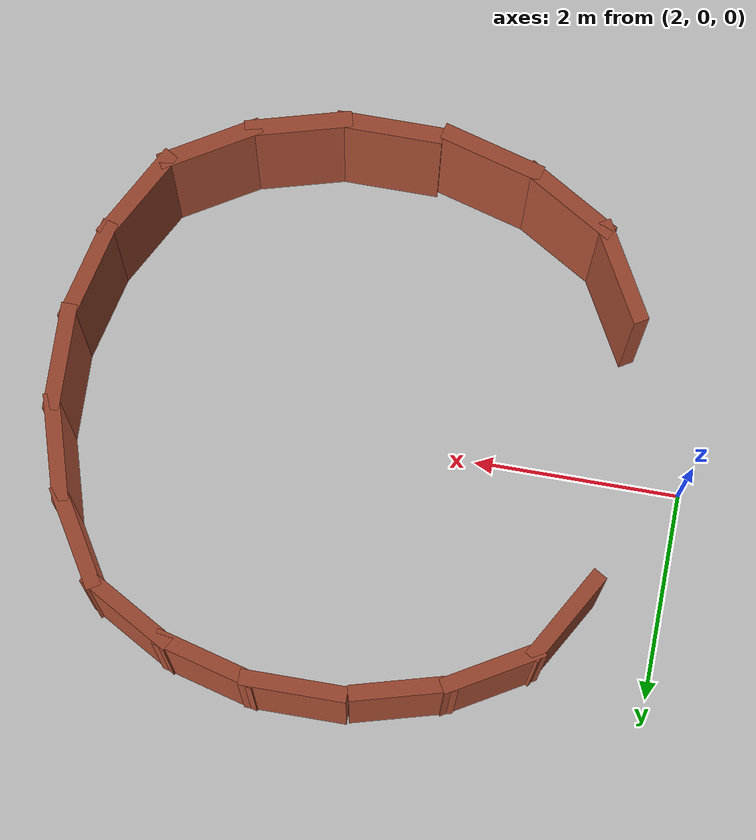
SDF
<sdf version="1.6">
 <world name="default">
  <light name="sun" type="directional">
   <pose>0 0 10 0 -0 0</pose>
   <diffuse>0.8 0.8 0.8 1</diffuse>
   <specular>0.2 0.2 0.2 1</specular>
   <attenuation>
    <range>1000</range>
    <constant>0.9</constant>
    <linear>0.01</linear>
    <quadratic>0.001</quadratic>
   </attenuation>
   <direction>-0.5 0.1 -0.9</direction>
  </light>
  <model name="ground_plane">
   <static>1</static>
   <link name="link">
    <collision name="collision">
     <geometry><plane><normal>0 0 1</normal><size>100 100</size></plane></geometry>
     <surface><friction><ode><mu>100</mu><mu2>50</mu2></ode></friction></surface>
    </collision>
    <visual name="visual">
     <cast_shadows>0</cast_shadows>
     <geometry><plane><normal>0 0 1</normal><size>100 100</size></plane></geometry>
     <material>
      <script><uri>file://media/materials/scripts/gazebo.material</uri><name>Gazebo/Grey</name></script>
     </material>
    </visual>
   </link>
  </model>
  <gravity>0 0 -9.8</gravity>
  <magnetic_field>6e-06 2.3e-05 -4.2e-05</magnetic_field>
  <atmosphere type="adiabatic"/>
  <physics name="default_physics" default="0" type="ode">
   <max_step_size>0.001</max_step_size>
   <real_time_factor>1</real_time_factor>
   <real_time_update_rate>1000</real_time_update_rate>
  </physics>
  <scene><ambient>0.4 0.4 0.4 1</ambient><background>0.7 0.7 0.7 1</background><shadows>1</shadows></scene>
  <audio><device>default</device></audio>
  <spherical_coordinates>
   <surface_model>EARTH_WGS84</surface_model>
   <latitude_deg>0</latitude_deg>
   <longitude_deg>0</longitude_deg>
   <elevation>0</elevation>
   <heading_deg>0</heading_deg>
  </spherical_coordinates>
  <model name="C_shape">
   <pose>6.40569 0.017417 0 0 -0 0</pose>
   <link name="Wall_0">
    <collision name="Wall_0_Collision">
     <geometry><box><size>1 0.15 2.5</size></box></geometry>
     <pose>0 0 1.25 0 -0 0</pose>
    </collision>
    <visual name="Wall_0_Visual">
     <pose>0 0 1.25 0 -0 0</pose>
     <geometry><box><size>1 0.15 2.5</size></box></geometry>
     <material>
      <script><uri>file://media/materials/scripts/gazebo.material</uri><name>Gazebo/Bricks</name></script>
      <ambient>1 1 1 1</ambient>
     </material>
     <meta><layer>0</layer></meta>
    </visual>
    <pose>1.51765 -0 0 0 -0 1.5708</pose>
   </link>
   <link name="Wall_1">
    <collision name="Wall_1_Collision">
     <geometry><box><size>1 0.15 2.5</size></box></geometry>
     <pose>0 0 1.25 0 -0 0</pose>
    </collision>
    <visual name="Wall_1_Visual">
     <pose>0 0 1.25 0 -0 0</pose>
     <geometry><box><size>1 0.15 2.5</size></box></geometry>
     <material>
      <script><uri>file://media/materials/scripts/gazebo.material</uri><name>Gazebo/Bricks</name></script>
      <ambient>1 1 1 1</ambient>
     </material>
     <meta><layer>0</layer></meta>
    </visual>
    <pose>1.40765 0.835518 0 0 -0 1.8326</pose>
   </link>
   <link name="Wall_10">
    <collision name="Wall_10_Collision">
     <geometry><box><size>1 0.15 2.5</size></box></geometry>
     <pose>0 0 1.25 0 -0 0</pose>
    </collision>
    <visual name="Wall_10_Visual">
     <pose>0 0 1.25 0 -0 0</pose>
     <geometry><box><size>1 0.15 2.5</size></box></geometry>
     <material>
      <script><uri>file://media/materials/scripts/gazebo.material</uri><name>Gazebo/Bricks</name></script>
      <ambient>1 1 1 1</ambient>
     </material>
     <meta><layer>0</layer></meta>
    </visual>
    <pose>0.504592 -2.19466 0 0 -0 -2.61799</pose>
   </link>
   <link name="Wall_11">
    <collision name="Wall_11_Collision">
     <geometry><box><size>1 0.15 2.5</size></box></geometry>
     <pose>0 0 1.25 0 -0 0</pose>
    </collision>
    <visual name="Wall_11_Visual">
     <pose>0 0 1.25 0 -0 0</pose>
     <geometry><box><size>1 0.15 2.5</size></box></geometry>
     <material>
      <script><uri>file://media/materials/scripts/gazebo.material</uri><name>Gazebo/Bricks</name></script>
      <ambient>1 1 1 1</ambient>
     </material>
     <meta><layer>0</layer></meta>
    </visual>
    <pose>-0.273987 -2.51716 0 0 -0 -2.87979</pose>
   </link>
   <link name="Wall_12">
    <collision name="Wall_12_Collision">
     <geometry><box><size>1 0.15 2.5</size></box></geometry>
     <pose>0 0 1.25 0 -0 0</pose>
    </collision>
    <visual name="Wall_12_Visual">
     <pose>0 0 1.25 0 -0 0</pose>
     <geometry><box><size>1 0.15 2.5</size></box></geometry>
     <material>
      <script><uri>file://media/materials/scripts/gazebo.material</uri><name>Gazebo/Bricks</name></script>
      <ambient>1 1 1 1</ambient>
     </material>
     <meta><layer>0</layer></meta>
    </visual>
    <pose>-1.1095 -2.62716 0 0 -0 3.14159</pose>
   </link>
   <link name="Wall_3">
    <collision name="Wall_3_Collision">
     <geometry><box><size>1 0.15 2.5</size></box></geometry>
     <pose>0 0 1.25 0 -0 0</pose>
    </collision>
    <visual name="Wall_3_Visual">
     <pose>0 0 1.25 0 -0 0</pose>
     <geometry><box><size>1 0.15 2.5</size></box></geometry>
     <material>
      <script><uri>file://media/materials/scripts/gazebo.material</uri><name>Gazebo/Bricks</name></script>
      <ambient>1 1 1 1</ambient>
     </material>
     <meta><layer>0</layer></meta>
    </visual>
    <pose>1.08515 1.6141 0 0 -0 2.0944</pose>
   </link>
   <link name="Wall_4">
    <collision name="Wall_4_Collision">
     <geometry><box><size>1 0.15 2.5</size></box></geometry>
     <pose>0 0 1.25 0 -0 0</pose>
    </collision>
    <visual name="Wall_4_Visual">
     <pose>0 0 1.25 0 -0 0</pose>
     <geometry><box><size>1 0.15 2.5</size></box></geometry>
     <material>
      <script><uri>file://media/materials/scripts/gazebo.material</uri><name>Gazebo/Bricks</name></script>
      <ambient>1 1 1 1</ambient>
     </material>
     <meta><layer>0</layer></meta>
    </visual>
    <pose>0.504592 2.19466 0 0 -0 2.61799</pose>
   </link>
   <link name="Wall_5">
    <collision name="Wall_5_Collision">
     <geometry><box><size>1 0.15 2.5</size></box></geometry>
     <pose>0 0 1.25 0 -0 0</pose>
    </collision>
    <visual name="Wall_5_Visual">
     <pose>0 0 1.25 0 -0 0</pose>
     <geometry><box><size>1 0.15 2.5</size></box></geometry>
     <material>
      <script><uri>file://media/materials/scripts/gazebo.material</uri><name>Gazebo/Bricks</name></script>
      <ambient>1 1 1 1</ambient>
     </material>
     <meta><layer>0</layer></meta>
    </visual>
    <pose>-0.273987 2.51716 0 0 -0 2.87979</pose>
   </link>
   <link name="Wall_6">
    <collision name="Wall_6_Collision">
     <geometry><box><size>1 0.15 2.5</size></box></geometry>
     <pose>0 0 1.25 0 -0 0</pose>
    </collision>
    <visual name="Wall_6_Visual">
     <pose>0 0 1.25 0 -0 0</pose>
     <geometry><box><size>1 0.15 2.5</size></box></geometry>
     <material>
      <script><uri>file://media/materials/scripts/gazebo.material</uri><name>Gazebo/Bricks</name></script>
      <ambient>1 1 1 1</ambient>
     </material>
     <meta><layer>0</layer></meta>
    </visual>
    <pose>-1.1095 2.62716 0 0 -0 3.14159</pose>
   </link>
   <link name="Wall_8">
    <collision name="Wall_8_Collision">
     <geometry><box><size>1 0.15 2.5</size></box></geometry>
     <pose>0 0 1.25 0 -0 0</pose>
    </collision>
    <visual name="Wall_8_Visual">
     <pose>0 0 1.25 0 -0 0</pose>
     <geometry><box><size>1 0.15 2.5</size></box></geometry>
     <material>
      <script><uri>file://media/materials/scripts/gazebo.material</uri><name>Gazebo/Bricks</name></script>
      <ambient>1 1 1 1</ambient>
     </material>
     <meta><layer>0</layer></meta>
    </visual>
    <pose>1.40765 -0.835519 0 0 -0 -1.8326</pose>
   </link>
   <link name="Wall_9">
    <collision name="Wall_9_Collision">
     <geometry><box><size>1 0.15 2.5</size></box></geometry>
     <pose>0 0 1.25 0 -0 0</pose>
    </collision>
    <visual name="Wall_9_Visual">
     <pose>0 0 1.25 0 -0 0</pose>
     <geometry><box><size>1 0.15 2.5</size></box></geometry>
     <material>
      <script><uri>file://media/materials/scripts/gazebo.material</uri><name>Gazebo/Bricks</name></script>
      <ambient>1 1 1 1</ambient>
     </material>
     <meta><layer>0</layer></meta>
    </visual>
    <pose>1.08515 -1.6141 0 0 -0 -2.0944</pose>
   </link>
   <static>1</static>
  </model>
  <model name="C_shape_top_cover">
   <link name="Wall_10">
    <pose>0.504592 -2.19466 0 0 0 -2.61799</pose>
    <visual name="Wall_10_Visual">
     <pose>0 0 1.25 0 -0 0</pose>
     <geometry><box><size>1 0.15 2.5</size></box></geometry>
     <material>
      <script><uri>file://media/materials/scripts/gazebo.material</uri><name>Gazebo/Bricks</name></script>
      <ambient>1 1 1 1</ambient>
     </material>
     <meta><layer>0</layer></meta>
    </visual>
    <collision name="Wall_10_Collision">
     <pose>0 0 1.25 0 -0 0</pose>
     <geometry><box><size>1 0.15 2.5</size></box></geometry>
     <surface>
      <friction>
       <ode><mu>1</mu><mu2>1</mu2><fdir1>0 0 0</fdir1><slip1>0</slip1><slip2>0</slip2></ode>
       <torsional>
        <coefficient>1</coefficient>
        <patch_radius>0</patch_radius>
        <surface_radius>0</surface_radius>
        <use_patch_radius>1</use_patch_radius>
        <ode><slip>0</slip></ode>
       </torsional>
      </friction>
      <bounce><restitution_coefficient>0</restitution_coefficient><threshold>1e+06</threshold></bounce>
      <contact>
       <collide_without_contact>0</collide_without_contact>
       <collide_without_contact_bitmask>1</collide_without_contact_bitmask>
       <collide_bitmask>1</collide_bitmask>
       <ode>
        <soft_cfm>0</soft_cfm>
        <soft_erp>0.2</soft_erp>
        <kp>1e+13</kp>
        <kd>1</kd>
        <max_vel>0.01</max_vel>
        <min_depth>0</min_depth>
       </ode>
       <bullet>
        <split_impulse>1</split_impulse>
        <split_impulse_penetration_threshold>-0.01</split_impulse_penetration_threshold>
        <soft_cfm>0</soft_cfm>
        <soft_erp>0.2</soft_erp>
        <kp>1e+13</kp>
        <kd>1</kd>
       </bullet>
      </contact>
     </surface>
    </collision>
   </link>
   <link name="Wall_11">
    <pose>-0.273987 -2.51716 0 0 0 -2.87979</pose>
    <visual name="Wall_11_Visual">
     <pose>0 0 1.25 0 -0 0</pose>
     <geometry><box><size>1 0.15 2.5</size></box></geometry>
     <material>
      <script><uri>file://media/materials/scripts/gazebo.material</uri><name>Gazebo/Bricks</name></script>
      <ambient>1 1 1 1</ambient>
     </material>
     <meta><layer>0</layer></meta>
    </visual>
    <collision name="Wall_11_Collision">
     <pose>0 0 1.25 0 -0 0</pose>
     <geometry><box><size>1 0.15 2.5</size></box></geometry>
     <surface>
      <friction>
       <ode><mu>1</mu><mu2>1</mu2><fdir1>0 0 0</fdir1><slip1>0</slip1><slip2>0</slip2></ode>
       <torsional>
        <coefficient>1</coefficient>
        <patch_radius>0</patch_radius>
        <surface_radius>0</surface_radius>
        <use_patch_radius>1</use_patch_radius>
        <ode><slip>0</slip></ode>
       </torsional>
      </friction>
      <bounce><restitution_coefficient>0</restitution_coefficient><threshold>1e+06</threshold></bounce>
      <contact>
       <collide_without_contact>0</collide_without_contact>
       <collide_without_contact_bitmask>1</collide_without_contact_bitmask>
       <collide_bitmask>1</collide_bitmask>
       <ode>
        <soft_cfm>0</soft_cfm>
        <soft_erp>0.2</soft_erp>
        <kp>1e+13</kp>
        <kd>1</kd>
        <max_vel>0.01</max_vel>
        <min_depth>0</min_depth>
       </ode>
       <bullet>
        <split_impulse>1</split_impulse>
        <split_impulse_penetration_threshold>-0.01</split_impulse_penetration_threshold>
        <soft_cfm>0</soft_cfm>
        <soft_erp>0.2</soft_erp>
        <kp>1e+13</kp>
        <kd>1</kd>
       </bullet>
      </contact>
     </surface>
    </collision>
   </link>
   <link name="Wall_3">
    <pose>1.08515 1.6141 0 0 -0 2.0944</pose>
    <visual name="Wall_3_Visual">
     <pose>0 0 1.25 0 -0 0</pose>
     <geometry><box><size>1 0.15 2.5</size></box></geometry>
     <material>
      <script><uri>file://media/materials/scripts/gazebo.material</uri><name>Gazebo/Bricks</name></script>
      <ambient>1 1 1 1</ambient>
     </material>
     <meta><layer>0</layer></meta>
    </visual>
    <collision name="Wall_3_Collision">
     <pose>0 0 1.25 0 -0 0</pose>
     <geometry><box><size>1 0.15 2.5</size></box></geometry>
     <surface>
      <friction>
       <ode><mu>1</mu><mu2>1</mu2><fdir1>0 0 0</fdir1><slip1>0</slip1><slip2>0</slip2></ode>
       <torsional>
        <coefficient>1</coefficient>
        <patch_radius>0</patch_radius>
        <surface_radius>0</surface_radius>
        <use_patch_radius>1</use_patch_radius>
        <ode><slip>0</slip></ode>
       </torsional>
      </friction>
      <bounce><restitution_coefficient>0</restitution_coefficient><threshold>1e+06</threshold></bounce>
      <contact>
       <collide_without_contact>0</collide_without_contact>
       <collide_without_contact_bitmask>1</collide_without_contact_bitmask>
       <collide_bitmask>1</collide_bitmask>
       <ode>
        <soft_cfm>0</soft_cfm>
        <soft_erp>0.2</soft_erp>
        <kp>1e+13</kp>
        <kd>1</kd>
        <max_vel>0.01</max_vel>
        <min_depth>0</min_depth>
       </ode>
       <bullet>
        <split_impulse>1</split_impulse>
        <split_impulse_penetration_threshold>-0.01</split_impulse_penetration_threshold>
        <soft_cfm>0</soft_cfm>
        <soft_erp>0.2</soft_erp>
        <kp>1e+13</kp>
        <kd>1</kd>
       </bullet>
      </contact>
     </surface>
    </collision>
   </link>
   <link name="Wall_4">
    <pose>0.504592 2.19466 0 0 -0 2.61799</pose>
    <visual name="Wall_4_Visual">
     <pose>0 0 1.25 0 -0 0</pose>
     <geometry><box><size>1 0.15 2.5</size></box></geometry>
     <material>
      <script><uri>file://media/materials/scripts/gazebo.material</uri><name>Gazebo/Bricks</name></script>
      <ambient>1 1 1 1</ambient>
     </material>
     <meta><layer>0</layer></meta>
    </visual>
    <collision name="Wall_4_Collision">
     <pose>0 0 1.25 0 -0 0</pose>
     <geometry><box><size>1 0.15 2.5</size></box></geometry>
     <surface>
      <friction>
       <ode><mu>1</mu><mu2>1</mu2><fdir1>0 0 0</fdir1><slip1>0</slip1><slip2>0</slip2></ode>
       <torsional>
        <coefficient>1</coefficient>
        <patch_radius>0</patch_radius>
        <surface_radius>0</surface_radius>
        <use_patch_radius>1</use_patch_radius>
        <ode><slip>0</slip></ode>
       </torsional>
      </friction>
      <bounce><restitution_coefficient>0</restitution_coefficient><threshold>1e+06</threshold></bounce>
      <contact>
       <collide_without_contact>0</collide_without_contact>
       <collide_without_contact_bitmask>1</collide_without_contact_bitmask>
       <collide_bitmask>1</collide_bitmask>
       <ode>
        <soft_cfm>0</soft_cfm>
        <soft_erp>0.2</soft_erp>
        <kp>1e+13</kp>
        <kd>1</kd>
        <max_vel>0.01</max_vel>
        <min_depth>0</min_depth>
       </ode>
       <bullet>
        <split_impulse>1</split_impulse>
        <split_impulse_penetration_threshold>-0.01</split_impulse_penetration_threshold>
        <soft_cfm>0</soft_cfm>
        <soft_erp>0.2</soft_erp>
        <kp>1e+13</kp>
        <kd>1</kd>
       </bullet>
      </contact>
     </surface>
    </collision>
   </link>
   <link name="Wall_5">
    <pose>-0.273987 2.51716 0 0 -0 2.87979</pose>
    <visual name="Wall_5_Visual">
     <pose>0 0 1.25 0 -0 0</pose>
     <geometry><box><size>1 0.15 2.5</size></box></geometry>
     <material>
      <script><uri>file://media/materials/scripts/gazebo.material</uri><name>Gazebo/Bricks</name></script>
      <ambient>1 1 1 1</ambient>
     </material>
     <meta><layer>0</layer></meta>
    </visual>
    <collision name="Wall_5_Collision">
     <pose>0 0 1.25 0 -0 0</pose>
     <geometry><box><size>1 0.15 2.5</size></box></geometry>
     <surface>
      <friction>
       <ode><mu>1</mu><mu2>1</mu2><fdir1>0 0 0</fdir1><slip1>0</slip1><slip2>0</slip2></ode>
       <torsional>
        <coefficient>1</coefficient>
        <patch_radius>0</patch_radius>
        <surface_radius>0</surface_radius>
        <use_patch_radius>1</use_patch_radius>
        <ode><slip>0</slip></ode>
       </torsional>
      </friction>
      <bounce><restitution_coefficient>0</restitution_coefficient><threshold>1e+06</threshold></bounce>
      <contact>
       <collide_without_contact>0</collide_without_contact>
       <collide_without_contact_bitmask>1</collide_without_contact_bitmask>
       <collide_bitmask>1</collide_bitmask>
       <ode>
        <soft_cfm>0</soft_cfm>
        <soft_erp>0.2</soft_erp>
        <kp>1e+13</kp>
        <kd>1</kd>
        <max_vel>0.01</max_vel>
        <min_depth>0</min_depth>
       </ode>
       <bullet>
        <split_impulse>1</split_impulse>
        <split_impulse_penetration_threshold>-0.01</split_impulse_penetration_threshold>
        <soft_cfm>0</soft_cfm>
        <soft_erp>0.2</soft_erp>
        <kp>1e+13</kp>
        <kd>1</kd>
       </bullet>
      </contact>
     </surface>
    </collision>
   </link>
   <link name="Wall_9">
    <pose>1.08515 -1.6141 0 0 0 -2.0944</pose>
    <visual name="Wall_9_Visual">
     <pose>0 0 1.25 0 -0 0</pose>
     <geometry><box><size>1 0.15 2.5</size></box></geometry>
     <material>
      <script><uri>file://media/materials/scripts/gazebo.material</uri><name>Gazebo/Bricks</name></script>
      <ambient>1 1 1 1</ambient>
     </material>
     <meta><layer>0</layer></meta>
    </visual>
    <collision name="Wall_9_Collision">
     <pose>0 0 1.25 0 -0 0</pose>
     <geometry><box><size>1 0.15 2.5</size></box></geometry>
     <surface>
      <friction>
       <ode><mu>1</mu><mu2>1</mu2><fdir1>0 0 0</fdir1><slip1>0</slip1><slip2>0</slip2></ode>
       <torsional>
        <coefficient>1</coefficient>
        <patch_radius>0</patch_radius>
        <surface_radius>0</surface_radius>
        <use_patch_radius>1</use_patch_radius>
        <ode><slip>0</slip></ode>
       </torsional>
      </friction>
      <bounce><restitution_coefficient>0</restitution_coefficient><threshold>1e+06</threshold></bounce>
      <contact>
       <collide_without_contact>0</collide_without_contact>
       <collide_without_contact_bitmask>1</collide_without_contact_bitmask>
       <collide_bitmask>1</collide_bitmask>
       <ode>
        <soft_cfm>0</soft_cfm>
        <soft_erp>0.2</soft_erp>
        <kp>1e+13</kp>
        <kd>1</kd>
        <max_vel>0.01</max_vel>
        <min_depth>0</min_depth>
       </ode>
       <bullet>
        <split_impulse>1</split_impulse>
        <split_impulse_penetration_threshold>-0.01</split_impulse_penetration_threshold>
        <soft_cfm>0</soft_cfm>
        <soft_erp>0.2</soft_erp>
        <kp>1e+13</kp>
        <kd>1</kd>
       </bullet>
      </contact>
     </surface>
    </collision>
   </link>
   <static>1</static>
   <pose>4.03954 -0.017857 0 0 0 -3.14039</pose>
  </model>
 </world>
</sdf>
